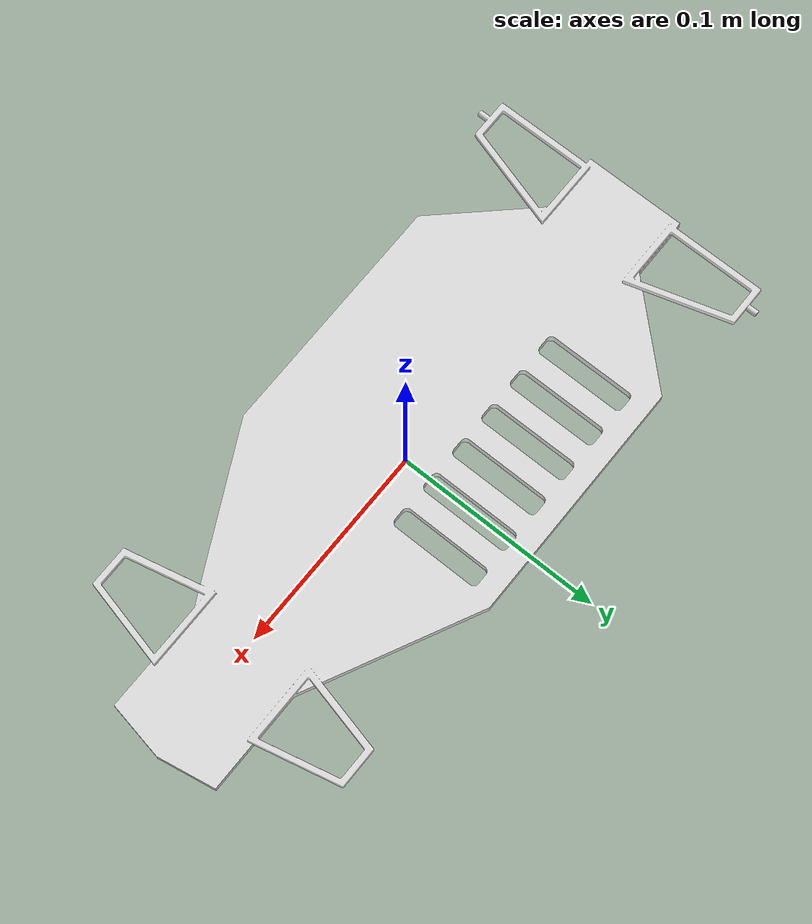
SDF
<?xml version='1.0'?>
<sdf version='1.6'>
  <model name='chassis'>
    <link name='link'>
      <inertial>
        <mass>0.26244</mass>
        <inertia>
          <ixx>0.00283444</ixx>
          <ixy>0</ixy>
          <ixz>0</ixz>
          <iyy>0.00039867</iyy>
          <iyz>0</iyz>
          <izz>0.00323293</izz>
        </inertia>
        <pose frame=''>0 0 0 0 -0 0</pose>
      </inertial>
      <pose frame=''>0 0 0 0 0 1.5708</pose>
      <gravity>1</gravity>
      <kinematic>0</kinematic>
      <enable_wind>0</enable_wind>
      <visual name='visual'>
        <pose frame=''>0 0 -0.0065 0 0 -1.57079</pose>
        <geometry>
          <mesh>
            <uri>model://chassis/meshes/chassisV5.dae</uri>
            <scale>1 1 1</scale>
          </mesh>
        </geometry>
        <material>
          <lighting>1</lighting>
          <shader type='vertex'>
            <normal_map>__default__</normal_map>
          </shader>
          <ambient>0.6 0.6 0.6 1</ambient>
          <diffuse>0.85 0.85 0.85 1</diffuse>
          <specular>0.6 0.6 0.6 1</specular>
          <emissive>0 0 0 1</emissive>
        </material>
        <transparency>0</transparency>
        <cast_shadows>1</cast_shadows>
      </visual>
      <collision name='collision'>
        <laser_retro>0</laser_retro>
        <max_contacts>10</max_contacts>
        <pose frame=''>0 0 0 0 -0 0</pose>
        <geometry>
          <box>
            <size>0.135 0.36 0.002</size>
          </box>
        </geometry>
        <surface>
          <friction>
            <ode>
              <mu>1</mu>
              <mu2>1</mu2>
              <fdir1>0 0 0</fdir1>
              <slip1>0</slip1>
              <slip2>0</slip2>
            </ode>
            <torsional>
              <coefficient>1</coefficient>
              <patch_radius>0</patch_radius>
              <surface_radius>0</surface_radius>
              <use_patch_radius>1</use_patch_radius>
              <ode>
                <slip>0</slip>
              </ode>
            </torsional>
          </friction>
          <bounce>
            <restitution_coefficient>0</restitution_coefficient>
            <threshold>1e+06</threshold>
          </bounce>
          <contact>
            <collide_without_contact>0</collide_without_contact>
            <collide_without_contact_bitmask>1</collide_without_contact_bitmask>
            <collide_bitmask>1</collide_bitmask>
            <ode>
              <soft_cfm>0</soft_cfm>
              <soft_erp>0.2</soft_erp>
              <kp>1e+13</kp>
              <kd>1</kd>
              <max_vel>0.01</max_vel>
              <min_depth>0</min_depth>
            </ode>
            <bullet>
              <split_impulse>1</split_impulse>
              <split_impulse_penetration_threshold>-0.01</split_impulse_penetration_threshold>
              <soft_cfm>0</soft_cfm>
              <soft_erp>0.2</soft_erp>
              <kp>1e+13</kp>
              <kd>1</kd>
            </bullet>
          </contact>
        </surface>
      </collision>
    </link>
  </model>
</sdf>
